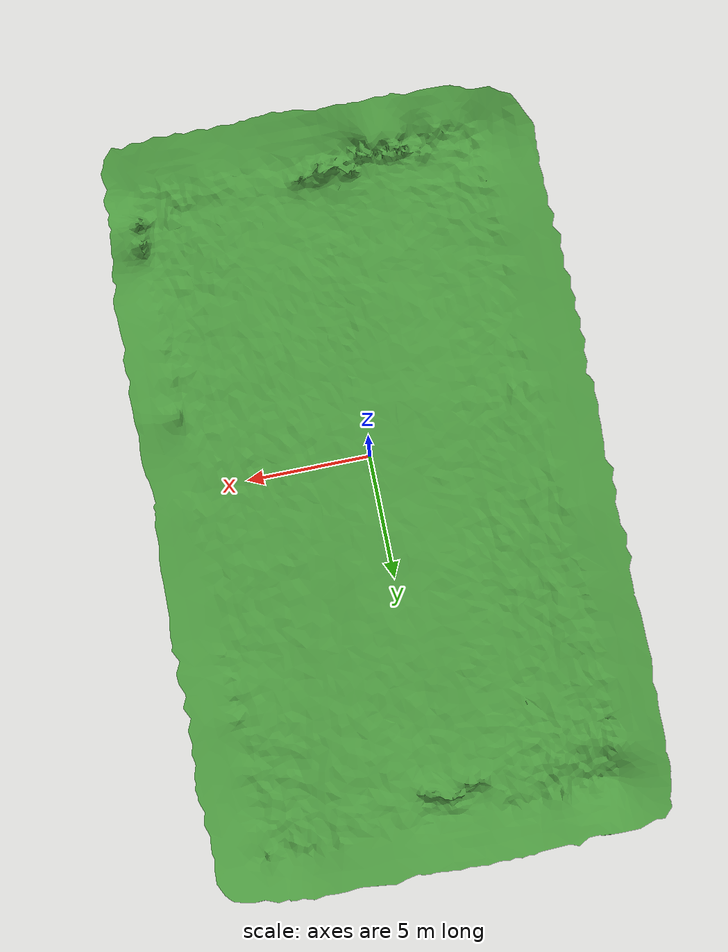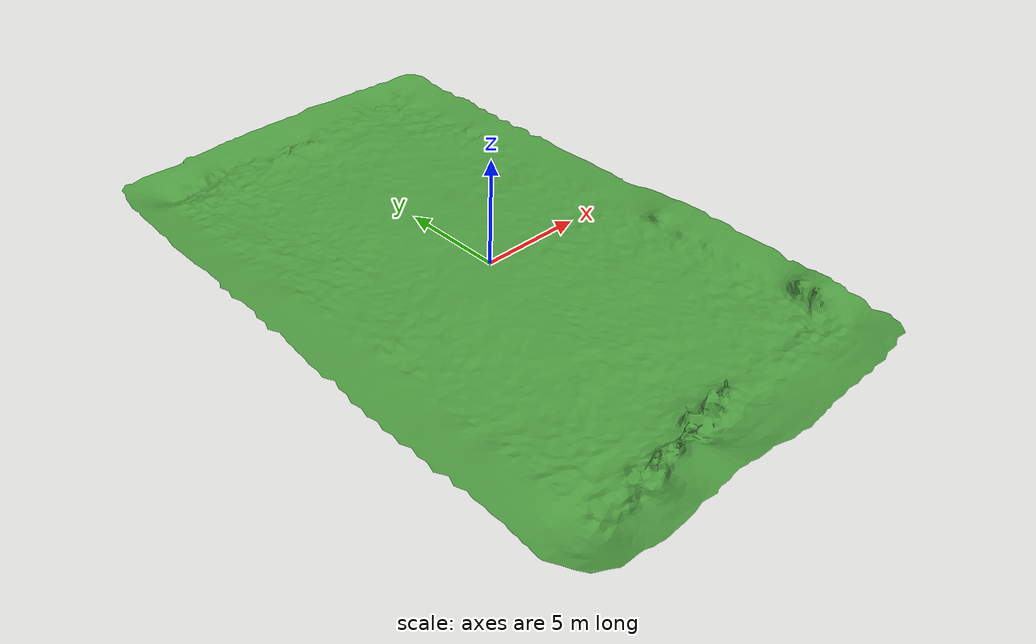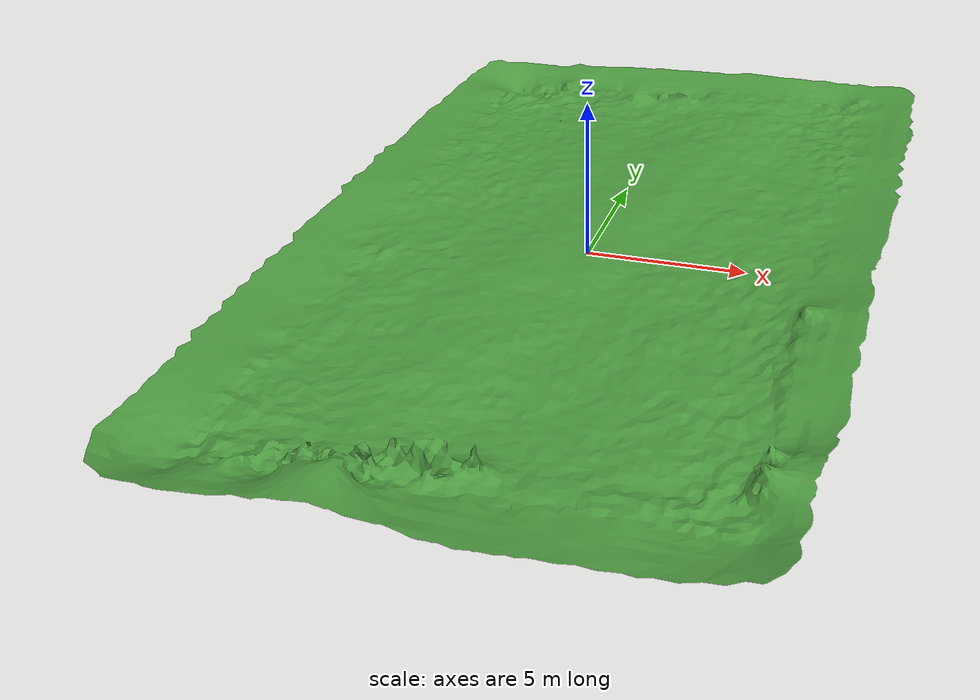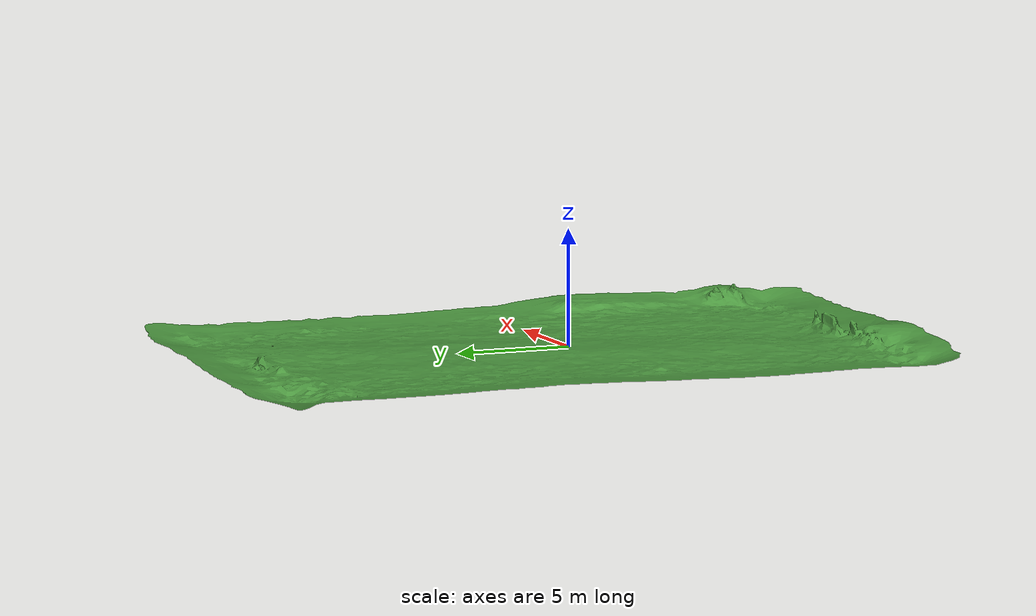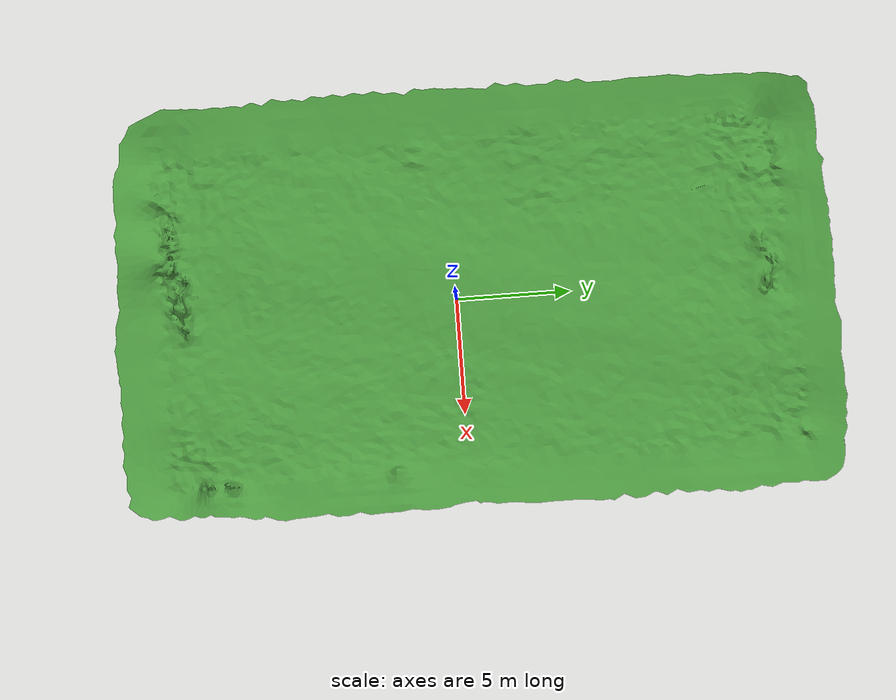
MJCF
<mujoco model="grass_field">
  <asset>
    <mesh
      name="grass_field_visual_mesh"
      file="assets/simple_field/field.obj"
      scale="1 1 1"/>

    <texture
      name="grass_tex"
      type="2d"
      file="assets/simple_field/field.png"/>

    <material
      name="grass_mat"
      texture="grass_tex"
      texuniform="false"
      reflectance="0.0"
      shininess="0.0"
      specular="0.0"/>
  </asset>

  <worldbody>
    <body name="grass_field_body" pos="0 0 0">
      <!-- Visual mesh -->
      <geom
        name="grass_field_visual_geom"
        type="mesh"
        mesh="grass_field_visual_mesh"
        material="grass_mat"
        quat="0.7071 0.7071 0 0"
        contype="0"
        conaffinity="0"
        group="1"/>

      <!-- Collision plane (RAISED 0.1m) -->
      <geom
        name="grass_field_collision_plane"
        type="plane"
        pos="0 0 0.1"
        size="0 0 0.1"
        contype="1"
        conaffinity="1"
        group="0"
        rgba="0.3 0.8 0.3 0.0"/>
    </body>
  </worldbody>
</mujoco>
